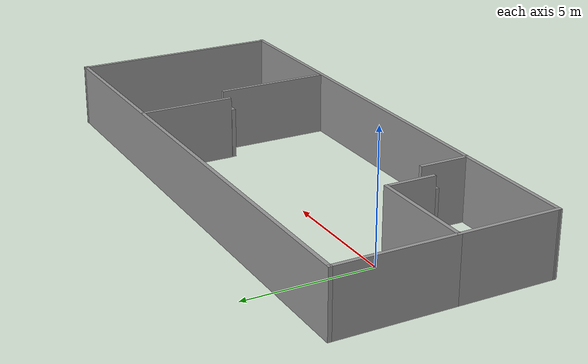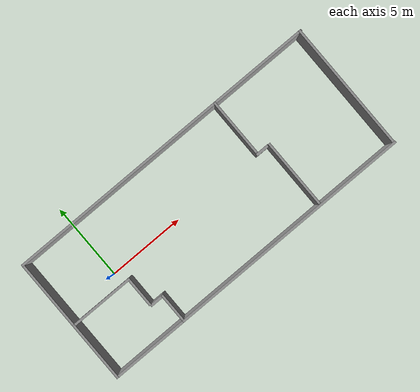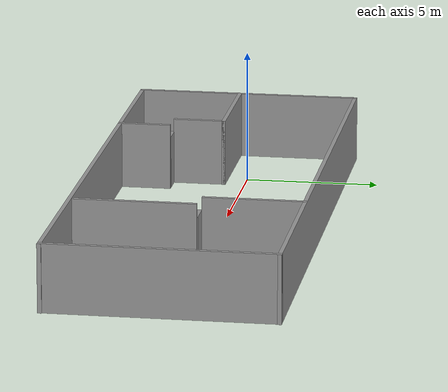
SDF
<?xml version='1.0'?>
<sdf version='1.6'>
  <model name='Base_world'>
    <pose frame=''>6.985 -0.464193 0 0 -0 0</pose>
    <link name='Door_1'>
      <collision name='Door_1_Collision'>
        <geometry>
          <box>
            <size>0.9 0.17 2</size>
          </box>
        </geometry>
        <pose frame=''>0 0 1 0 -0 0</pose>
      </collision>
      <visual name='Door_1_Visual'>
        <pose frame=''>0 0 1 0 -0 0</pose>
        <geometry>
          <box>
            <size>0.9 0.17 2</size>
          </box>
        </geometry>
        <material>
          <script>
            <uri>file://media/materials/scripts/gazebo.material</uri>
            <name>Gazebo/Grey</name>
          </script>
        </material>
      </visual>
      <pose frame=''>-5.8831 -2.32193 0 0 -0 0</pose>
    </link>
    <link name='Door_2'>
      <collision name='Door_2_Collision'>
        <geometry>
          <box>
            <size>0.9 0.17 2</size>
          </box>
        </geometry>
        <pose frame=''>0 0 1 0 -0 0</pose>
      </collision>
      <visual name='Door_2_Visual'>
        <pose frame=''>0 0 1 0 -0 0</pose>
        <geometry>
          <box>
            <size>0.9 0.17 2</size>
          </box>
        </geometry>
        <material>
          <script>
            <uri>file://media/materials/scripts/gazebo.material</uri>
            <name>Gazebo/Grey</name>
          </script>
        </material>
      </visual>
      <pose frame=''>4.36272 0.376747 0 0 -0 0</pose>
    </link>
    <link name='Wall_0'>
      <collision name='Wall_0_Collision'>
        <geometry>
          <box>
            <size>4 0.15 2.5</size>
          </box>
        </geometry>
        <pose frame=''>0 0 1.25 0 -0 0</pose>
      </collision>
      <visual name='Wall_0_Visual'>
        <pose frame=''>0 0 1.25 0 -0 0</pose>
        <geometry>
          <box>
            <size>4 0.15 2.5</size>
          </box>
        </geometry>
        <material>
          <script>
            <uri>file://media/materials/scripts/gazebo.material</uri>
            <name>Gazebo/Grey</name>
          </script>
          <ambient>1 1 1 1</ambient>
        </material>
        <meta>
          <layer>0</layer>
        </meta>
      </visual>
      <pose frame=''>-10.375 -2.26081 0 0 -0 -1.5708</pose>
    </link>
    <link name='Wall_1'>
      <collision name='Wall_1_Collision'>
        <geometry>
          <box>
            <size>20.9 0.15 2.5</size>
          </box>
        </geometry>
        <pose frame=''>0 0 1.25 0 -0 0</pose>
      </collision>
      <visual name='Wall_1_Visual'>
        <pose frame=''>0 0 1.25 0 -0 0</pose>
        <geometry>
          <box>
            <size>20.9 0.15 2.5</size>
          </box>
        </geometry>
        <material>
          <script>
            <uri>file://media/materials/scripts/gazebo.material</uri>
            <name>Gazebo/Grey</name>
          </script>
          <ambient>1 1 1 1</ambient>
        </material>
        <meta>
          <layer>0</layer>
        </meta>
      </visual>
      <pose frame=''>-0 -4.16842 0 0 -0 0.001676</pose>
    </link>
    <link name='Wall_10'>
      <collision name='Wall_10_Collision'>
        <geometry>
          <box>
            <size>2 0.15 2.5</size>
          </box>
        </geometry>
        <pose frame=''>0 0 1.25 0 -0 0</pose>
      </collision>
      <visual name='Wall_10_Visual'>
        <pose frame=''>0 0 1.25 0 -0 0</pose>
        <geometry>
          <box>
            <size>2 0.15 2.5</size>
          </box>
        </geometry>
        <material>
          <script>
            <uri>file://media/materials/scripts/gazebo.material</uri>
            <name>Gazebo/Grey</name>
          </script>
          <ambient>1 1 1 1</ambient>
        </material>
        <meta>
          <layer>0</layer>
        </meta>
      </visual>
      <pose frame=''>-5.40283 -3.24693 0 0 -0 -1.5708</pose>
    </link>
    <link name='Wall_12'>
      <collision name='Wall_12_Collision'>
        <geometry>
          <box>
            <size>3.75 0.15 2.5</size>
          </box>
        </geometry>
        <pose frame=''>0 0 1.25 0 -0 0</pose>
      </collision>
      <visual name='Wall_12_Visual'>
        <pose frame=''>0 0 1.25 0 -0 0</pose>
        <geometry>
          <box>
            <size>3.75 0.15 2.5</size>
          </box>
        </geometry>
        <material>
          <script>
            <uri>file://media/materials/scripts/gazebo.material</uri>
            <name>Gazebo/Grey</name>
          </script>
          <ambient>1 1 1 1</ambient>
        </material>
        <meta>
          <layer>0</layer>
        </meta>
      </visual>
      <pose frame=''>3.97392 2.35032 0 0 -0 -1.5708</pose>
    </link>
    <link name='Wall_15'>
      <collision name='Wall_15_Collision'>
        <geometry>
          <box>
            <size>4.5 0.15 2.5</size>
          </box>
        </geometry>
        <pose frame=''>0 0 1.25 0 -0 0</pose>
      </collision>
      <visual name='Wall_15_Visual'>
        <pose frame=''>0 0 1.25 0 -0 0</pose>
        <geometry>
          <box>
            <size>4.5 0.15 2.5</size>
          </box>
        </geometry>
        <material>
          <script>
            <uri>file://media/materials/scripts/gazebo.material</uri>
            <name>Gazebo/Grey</name>
          </script>
          <ambient>1 1 1 1</ambient>
        </material>
        <meta>
          <layer>0</layer>
        </meta>
      </visual>
      <pose frame=''>4.84299 -1.82112 0 0 -0 -1.5708</pose>
    </link>
    <link name='Wall_2'>
      <collision name='Wall_2_Collision'>
        <geometry>
          <box>
            <size>8.48696 0.15 2.5</size>
          </box>
        </geometry>
        <pose frame=''>0 0 1.25 0 -0 0</pose>
      </collision>
      <visual name='Wall_2_Visual'>
        <pose frame=''>0 0 1.25 0 -0 0</pose>
        <geometry>
          <box>
            <size>8.48696 0.15 2.5</size>
          </box>
        </geometry>
        <material>
          <script>
            <uri>file://media/materials/scripts/gazebo.material</uri>
            <name>Gazebo/Grey</name>
          </script>
          <ambient>1 1 1 1</ambient>
        </material>
        <meta>
          <layer>0</layer>
        </meta>
      </visual>
      <pose frame=''>10.3402 0.017454 0 0 -0 1.5708</pose>
    </link>
    <link name='Wall_3'>
      <collision name='Wall_3_Collision'>
        <geometry>
          <box>
            <size>20.9 0.15 2.5</size>
          </box>
        </geometry>
        <pose frame=''>0 0 1.25 0 -0 0</pose>
      </collision>
      <visual name='Wall_3_Visual'>
        <pose frame=''>0 0 1.25 0 -0 0</pose>
        <geometry>
          <box>
            <size>20.9 0.15 2.5</size>
          </box>
        </geometry>
        <material>
          <script>
            <uri>file://media/materials/scripts/gazebo.material</uri>
            <name>Gazebo/Grey</name>
          </script>
          <ambient>1 1 1 1</ambient>
        </material>
        <meta>
          <layer>0</layer>
        </meta>
      </visual>
      <pose frame=''>-0 4.18593 0 0 -0 3.14159</pose>
    </link>
    <link name='Wall_5'>
      <collision name='Wall_5_Collision'>
        <geometry>
          <box>
            <size>4.67174 0.15 2.5</size>
          </box>
        </geometry>
        <pose frame=''>0 0 1.25 0 -0 0</pose>
      </collision>
      <visual name='Wall_5_Visual'>
        <pose frame=''>0 0 1.25 0 -0 0</pose>
        <geometry>
          <box>
            <size>4.67174 0.15 2.5</size>
          </box>
        </geometry>
        <material>
          <script>
            <uri>file://media/materials/scripts/gazebo.material</uri>
            <name>Gazebo/Grey</name>
          </script>
          <ambient>1 1 1 1</ambient>
        </material>
        <meta>
          <layer>0</layer>
        </meta>
      </visual>
      <pose frame=''>-10.375 1.92506 0 0 -0 -1.5708</pose>
    </link>
    <link name='Wall_6'>
      <collision name='Wall_6_Collision'>
        <geometry>
          <box>
            <size>4.25 0.15 2.5</size>
          </box>
        </geometry>
        <pose frame=''>0 0 1.25 0 -0 0</pose>
      </collision>
      <visual name='Wall_6_Visual'>
        <pose frame=''>0 0 1.25 0 -0 0</pose>
        <geometry>
          <box>
            <size>4.25 0.15 2.5</size>
          </box>
        </geometry>
        <material>
          <script>
            <uri>file://media/materials/scripts/gazebo.material</uri>
            <name>Gazebo/Grey</name>
          </script>
          <ambient>1 1 1 1</ambient>
        </material>
        <meta>
          <layer>0</layer>
        </meta>
      </visual>
      <pose frame=''>-8.325 -0.335807 0 0 -0 0</pose>
    </link>
    <link name='Wall_8'>
      <collision name='Wall_8_Collision'>
        <geometry>
          <box>
            <size>2 0.15 2.5</size>
          </box>
        </geometry>
        <pose frame=''>0 0 1.25 0 -0 0</pose>
      </collision>
      <visual name='Wall_8_Visual'>
        <pose frame=''>0 0 1.25 0 -0 0</pose>
        <geometry>
          <box>
            <size>2 0.15 2.5</size>
          </box>
        </geometry>
        <material>
          <script>
            <uri>file://media/materials/scripts/gazebo.material</uri>
            <name>Gazebo/Grey</name>
          </script>
          <ambient>1 1 1 1</ambient>
        </material>
        <meta>
          <layer>0</layer>
        </meta>
      </visual>
      <pose frame=''>-6.275 -1.26081 0 0 -0 -1.5708</pose>
    </link>
    <static>1</static>
  </model>
</sdf>
